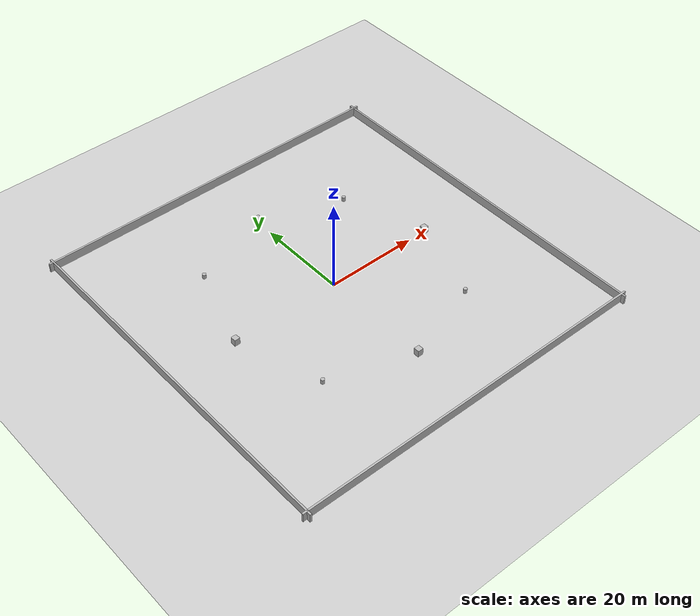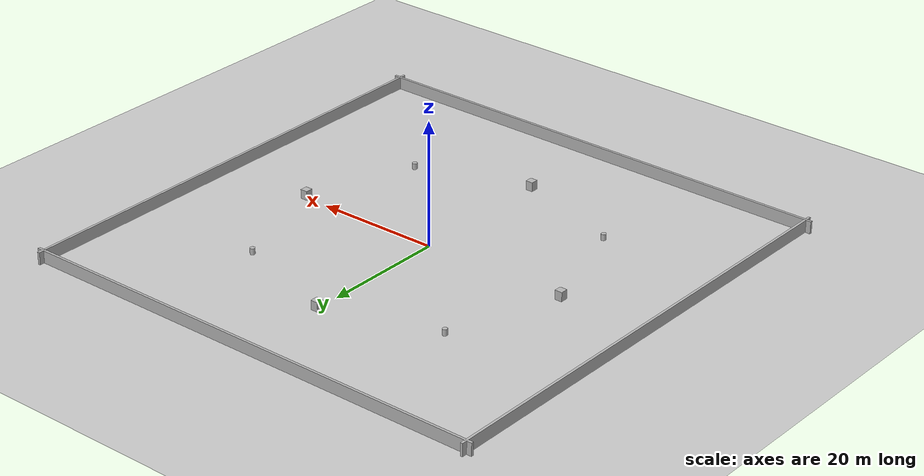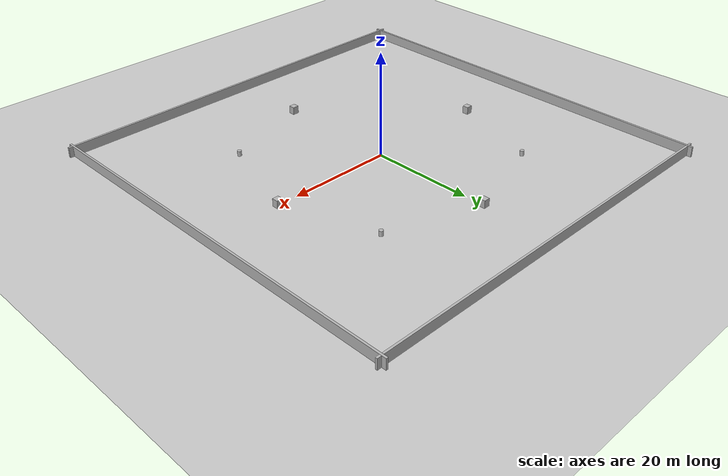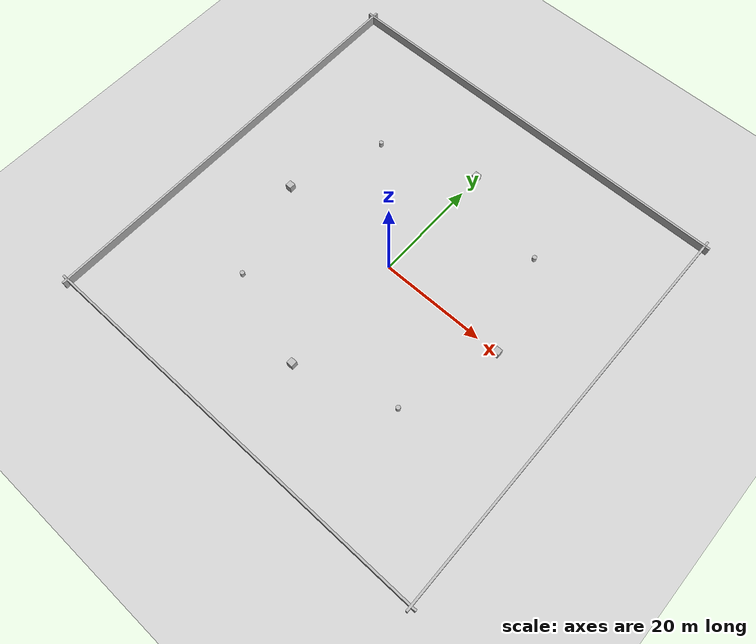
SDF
<?xml version="1.0"?>
<sdf version="1.6">
  <world name="rectangular_nav2_world_clean">
    <include>
      <uri>model://sun</uri>
    </include>
    <include>
      <uri>model://ground_plane</uri>
    </include>

    <scene>
      <shadows>false</shadows>
    </scene>

    <gui fullscreen="0">
      <camera name="user_camera">
        <pose frame="">0 0 40 0 1.57 0</pose>
        <view_controller>orbit</view_controller>
        <projection_type>perspective</projection_type>
      </camera>
    </gui>

    <!-- Boundary walls -->
    <model name="boundary_walls">
      <static>true</static>
      <link name="walls">
        <collision name="north_collision"><pose>0 39 1 0 0 0</pose><geometry><box><size>80 0.4 2</size></box></geometry></collision>
        <visual    name="north_visual"><pose>0 39 1 0 0 0</pose><geometry><box><size>80 0.4 2</size></box></geometry></visual>
        <collision name="south_collision"><pose>0 -39 1 0 0 0</pose><geometry><box><size>80 0.4 2</size></box></geometry></collision>
        <visual    name="south_visual"><pose>0 -39 1 0 0 0</pose><geometry><box><size>80 0.4 2</size></box></geometry></visual>
        <collision name="east_collision"><pose>39 0 1 0 0 0</pose><geometry><box><size>0.4 80 2</size></box></geometry></collision>
        <visual    name="east_visual"><pose>39 0 1 0 0 0</pose><geometry><box><size>0.4 80 2</size></box></geometry></visual>
        <collision name="west_collision"><pose>-39 0 1 0 0 0</pose><geometry><box><size>0.4 80 2</size></box></geometry></collision>
        <visual    name="west_visual"><pose>-39 0 1 0 0 0</pose><geometry><box><size>0.4 80 2</size></box></geometry></visual>
      </link>
    </model>

    <!-- Spaced obstacle field -->
    <model name="obstacles">
      <static>true</static>
      <link name="obstacles_link">
        <!-- Cylinders -->
        <collision name="cyl_1"><pose>-18 -18 0.5 0 0 0</pose><geometry><cylinder><radius>0.4</radius><length>1.0</length></cylinder></geometry></collision>
        <visual    name="cyl_1_v"><pose>-18 -18 0.5 0 0 0</pose><geometry><cylinder><radius>0.4</radius><length>1.0</length></cylinder></geometry></visual>
        <collision name="cyl_2"><pose>-18 18 0.5 0 0 0</pose><geometry><cylinder><radius>0.4</radius><length>1.0</length></cylinder></geometry></collision>
        <visual    name="cyl_2_v"><pose>-18 18 0.5 0 0 0</pose><geometry><cylinder><radius>0.4</radius><length>1.0</length></cylinder></geometry></visual>
        <collision name="cyl_3"><pose>18 -18 0.5 0 0 0</pose><geometry><cylinder><radius>0.4</radius><length>1.0</length></cylinder></geometry></collision>
        <visual    name="cyl_3_v"><pose>18 -18 0.5 0 0 0</pose><geometry><cylinder><radius>0.4</radius><length>1.0</length></cylinder></geometry></visual>
        <collision name="cyl_4"><pose>18 18 0.5 0 0 0</pose><geometry><cylinder><radius>0.4</radius><length>1.0</length></cylinder></geometry></collision>
        <visual    name="cyl_4_v"><pose>18 18 0.5 0 0 0</pose><geometry><cylinder><radius>0.4</radius><length>1.0</length></cylinder></geometry></visual>

        <!-- Boxes -->
        <collision name="box_1"><pose>0 -24 0.75 0 0 0</pose><geometry><box><size>1.2 1.2 1.5</size></box></geometry></collision>
        <visual    name="box_1_v"><pose>0 -24 0.75 0 0 0</pose><geometry><box><size>1.2 1.2 1.5</size></box></geometry></visual>
        <collision name="box_2"><pose>0 24 0.75 0 0 0</pose><geometry><box><size>1.2 1.2 1.5</size></box></geometry></collision>
        <visual    name="box_2_v"><pose>0 24 0.75 0 0 0</pose><geometry><box><size>1.2 1.2 1.5</size></box></geometry></visual>
        <collision name="box_3"><pose>-24 0 0.75 0 0 0</pose><geometry><box><size>1.2 1.2 1.5</size></box></geometry></collision>
        <visual    name="box_3_v"><pose>-24 0 0.75 0 0 0</pose><geometry><box><size>1.2 1.2 1.5</size></box></geometry></visual>
        <collision name="box_4"><pose>24 0 0.75 0 0 0</pose><geometry><box><size>1.2 1.2 1.5</size></box></geometry></collision>
        <visual    name="box_4_v"><pose>24 0 0.75 0 0 0</pose><geometry><box><size>1.2 1.2 1.5</size></box></geometry></visual>
      </link>
    </model>
  </world>
</sdf>
